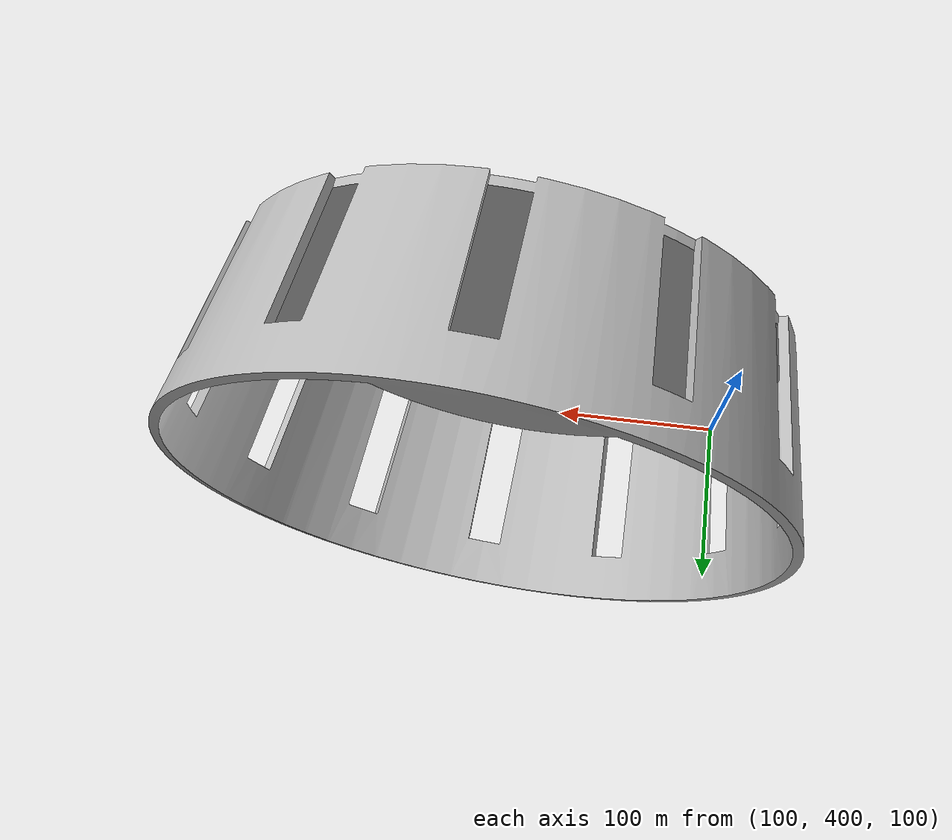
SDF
<?xml version='1.0'?>
<sdf version="1.4">
  <model name="stand">
    <pose>0 0 0.5 0 0 0</pose>
    <static>true</static>
    <link name="link">
      <collision name="collision">
        <geometry>
          <mesh>
            <uri>model://stand/meshes/stand.stl</uri>
          <scale>1 1 1</scale>
          </mesh>
        </geometry>
      </collision>
      <visual name="visual">
        <geometry>
          <mesh>
            <uri>model://stand/meshes/stand.stl</uri>
          <scale>1 1 1</scale>
          </mesh>
        </geometry>
      </visual>
    </link>
  </model>
</sdf>
